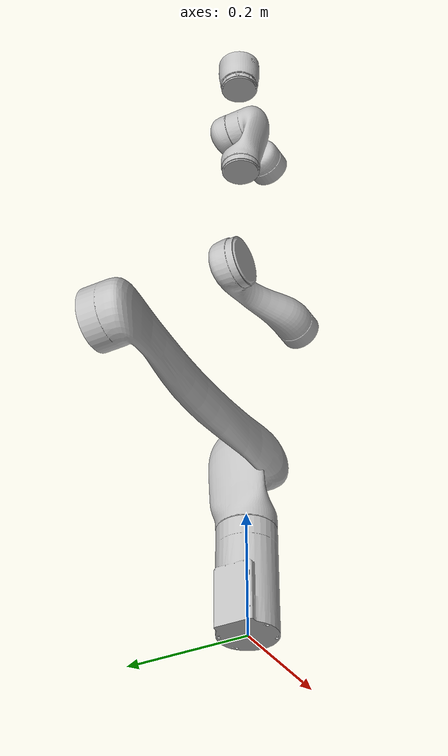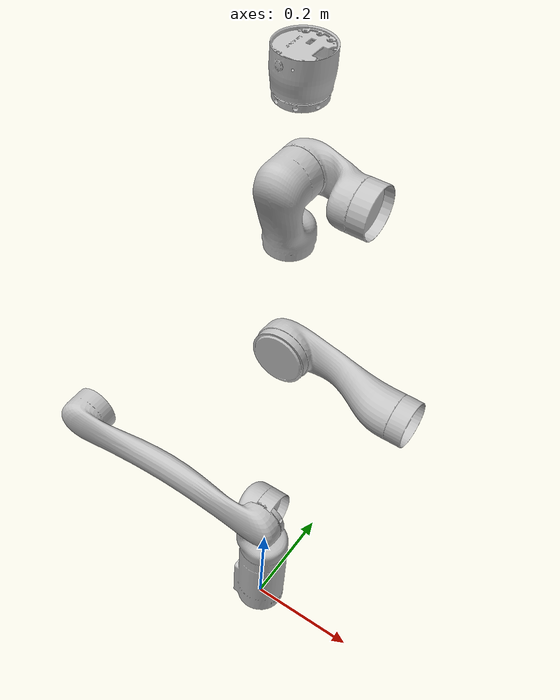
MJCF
<mujoco model="GEN3-6DOF_NO-VISION_URDF_ARM_V01">
    <compiler angle="radian" meshdir="/home/yons/cassie-stuff/arm-cassie/cassie_gen3_description/meshes/" />
    <size njmax="500" nconmax="100" />
    <asset>
        <mesh name="base_link" file="base_link.stl" />
        <mesh name="shoulder_link" file="shoulder_link.stl" />
        <mesh name="bicep_link" file="bicep_link.stl" />
        <mesh name="forearm_link" file="forearm_link.stl" />
        <mesh name="spherical_wrist_1_link" file="spherical_wrist_1_link.stl" />
        <mesh name="spherical_wrist_2_link" file="spherical_wrist_2_link.stl" />
        <mesh name="bracelet_no_vision_link" file="bracelet_no_vision_link.stl" />
    </asset>
    <worldbody>
        <geom type="mesh" contype="0" conaffinity="0" group="1" rgba="0.75294 0.75294 0.75294 1" mesh="base_link" />
        <body name="shoulder_link" pos="0 0 0.15643" quat="-3.67321e-06 -1 0 0">
            <inertial pos="-2.3e-05 -0.010364 -0.07336" quat="0.707051 0.0451246 -0.0453544 0.704263" mass="1.377" diaginertia="0.00488868 0.00457 0.00135132" />
            <joint name="joint_1" pos="0 0 0" axis="0 0 1" />
            <geom type="mesh" contype="0" conaffinity="0" group="1" rgba="0.75294 0.75294 0.75294 1" mesh="shoulder_link" />
            <body name="bicep_link" pos="0 0.005375 -0.12838" quat="0.707105 0.707108 0 0">
                <inertial pos="3.5e-05 -0.208207 -0.01889" quat="0.499531 0.50049 -0.500566 0.499411" mass="1.262" diaginertia="0.0471882 0.046752 0.000849791" />
                <joint name="joint_2" pos="0 0 0" axis="0 0 1" limited="true" range="-2.41 2.41" />
                <geom type="mesh" contype="0" conaffinity="0" group="1" rgba="0.75294 0.75294 0.75294 1" mesh="bicep_link" />
                <body name="forearm_link" pos="0 -0.41 0" quat="-3.67321e-06 1 0 0">
                    <inertial pos="1.8e-05 0.076168 -0.01397" quat="0.513497 0.485985 -0.486188 0.513577" mass="0.93" diaginertia="0.00848774 0.008292 0.000604256" />
                    <joint name="joint_3" pos="0 0 0" axis="0 0 1" limited="true" range="-2.66 2.66" />
                    <geom type="mesh" contype="0" conaffinity="0" group="1" rgba="0.75294 0.75294 0.75294 1" mesh="forearm_link" />
                    <body name="spherical_wrist_1_link" pos="0 0.20843 -0.006375" quat="0.707105 0.707108 0 0">
                        <inertial pos="-1e-06 0.008486 -0.062937" quat="0.704382 -0.062019 0.062019 0.704382" mass="0.678" diaginertia="0.00170753 0.001645 0.000347472" />
                        <joint name="joint_4" pos="0 0 0" axis="0 0 1" />
                        <geom type="mesh" contype="0" conaffinity="0" group="1" rgba="0.75294 0.75294 0.75294 1" mesh="spherical_wrist_1_link" />
                        <body name="spherical_wrist_2_link" pos="0 -0.00017505 -0.10593" quat="0.707105 -0.707108 0 0">
                            <inertial pos="-1e-06 0.046429 -0.008704" quat="0.5446 0.451011 -0.451011 0.5446" mass="0.678" diaginertia="0.00174437 0.001685 0.000351632" />
                            <joint name="joint_5" pos="0 0 0" axis="0 0 1" limited="true" range="-2.23 2.23" />
                            <geom type="mesh" contype="0" conaffinity="0" group="1" rgba="0.75294 0.75294 0.75294 1" mesh="spherical_wrist_2_link" />
                            <body name="bracelet_link" pos="0 0.10593 -0.00017505" quat="0.707105 0.707108 0 0">
                                <inertial pos="-9.3e-05 0.000132 -0.022905" quat="-0.0368025 0.719402 -0.0444884 0.69219" mass="0.364" diaginertia="0.00024027 0.000222769 0.000213961" />
                                <joint name="joint_6" pos="0 0 0" axis="0 0 1" />
                                <geom type="mesh" contype="0" conaffinity="0" group="1" rgba="0.75294 0.75294 0.75294 1" mesh="bracelet_no_vision_link" />
                            </body>
                        </body>
                    </body>
                </body>
            </body>
        </body>
    </worldbody>
</mujoco>
